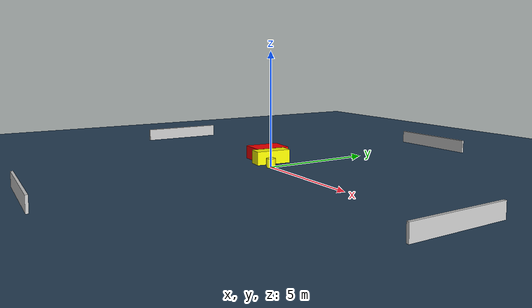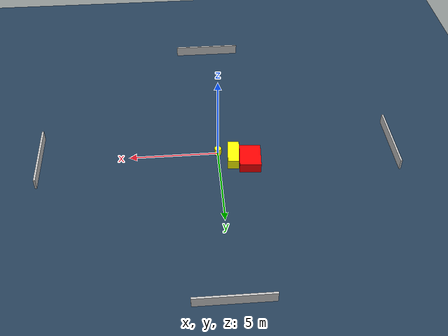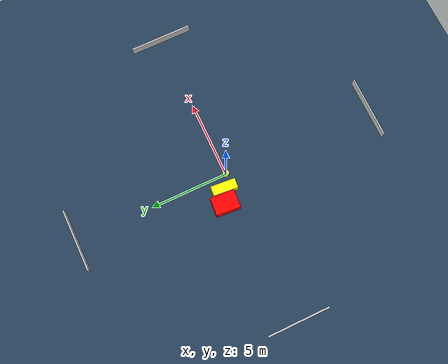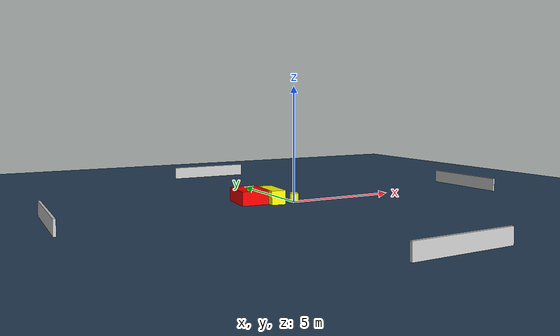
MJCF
<?xml version="1.0" ?>
<mujoco model="generated_environment">
  <option timestep="0.01" integrator="RK4" cone="elliptic"/>
  <default>
    <geom density="1"/>
  </default>
  <asset>
    <texture builtin="gradient" height="3072" name="skybox" rgb1="0.3 0.5 0.7" rgb2="0 0 0" type="skybox" width="512"/>
    <texture builtin="checker" height="300" name="groundplane" rgb1="0.2 0.3 0.4" rgb2="0.1 0.2 0.3" type="2d" width="300"/>
    <material name="groundplane" reflectance="0.2" texrepeat="5 5" texture="groundplane"/>
  </asset>
  <worldbody>
    <light dir="0 0 -1" directional="true" pos="0 0 1.5"/>
    <geom condim="3" friction="0.5 0.005 0.001" material="groundplane" name="floor" pos="0 0 0" size="0 0 0.05" type="plane"/>
    <body name="walls">
      <geom name="wall_1" condim="4" pos="-10.0 0.0 0.3" rgba="0.800000011920929 0.800000011920929 0.800000011920929 1.0" size="0.05 2.0 0.3" type="box"/>
      <geom name="wall_2" condim="4" pos="10.0 0.0 0.3" rgba="0.800000011920929 0.800000011920929 0.800000011920929 1.0" size="0.05 2.0 0.3" type="box"/>
      <geom name="wall_3" condim="4" pos="0.0 -10.0 0.3" rgba="0.800000011920929 0.800000011920929 0.800000011920929 1.0" size="2.0 0.05 0.3" type="box"/>
      <geom name="wall_4" condim="4" pos="0.0 10.0 0.3" rgba="0.800000011920929 0.800000011920929 0.800000011920929 1.0" size="2.0 0.05 0.3" type="box"/>
    </body>
    <body name="robot">
      <joint name="joint_x" type="slide" pos="0 0 0" axis="1 0 0"/>
      <joint name="joint_y" type="slide" pos="0 0 0" axis="0 1 0"/>
      <geom name="robot" type="cylinder" pos="0.0 0.0 0.2" size="0.2 0.2 0.0" mass="5.0" friction="1.0 0.005 0.0001" condim="4" rgba="1.0 1.0 0.0 1.0"/>
    </body>
    <body name="obstacle_1_movable">
      <geom name="obstacle_1_movable" condim="4" pos="-0.8343526847368997 0.5075204759503141 0.3" euler="0 0 354.97780389708123" friction="0.0 0.005 0.001" rgba="1.0 1.0 0.0 1.0" size="0.3124304849588273 0.7986922363128748 0.3" type="box" mass="0.1"/>
      <joint type="free"/>
    </body>
    <body name="obstacle_2_static">
      <geom name="obstacle_2_static" condim="4" pos="-1.7374925866640856 0.8632459335193442 0.3" euler="0 0 175.5106248436647" friction="0.0 0.005 0.001" rgba="1.0 0.0 0.0 1.0" size="0.5912428883292502 0.7890877776917293 0.3" type="box"/>
    </body>
  </worldbody>
  <actuator>
    <motor name="actuator_x" joint="joint_x" gear="1" ctrlrange="-1 1"/>
    <motor name="actuator_y" joint="joint_y" gear="1" ctrlrange="-1 1"/>
  </actuator>
</mujoco>
